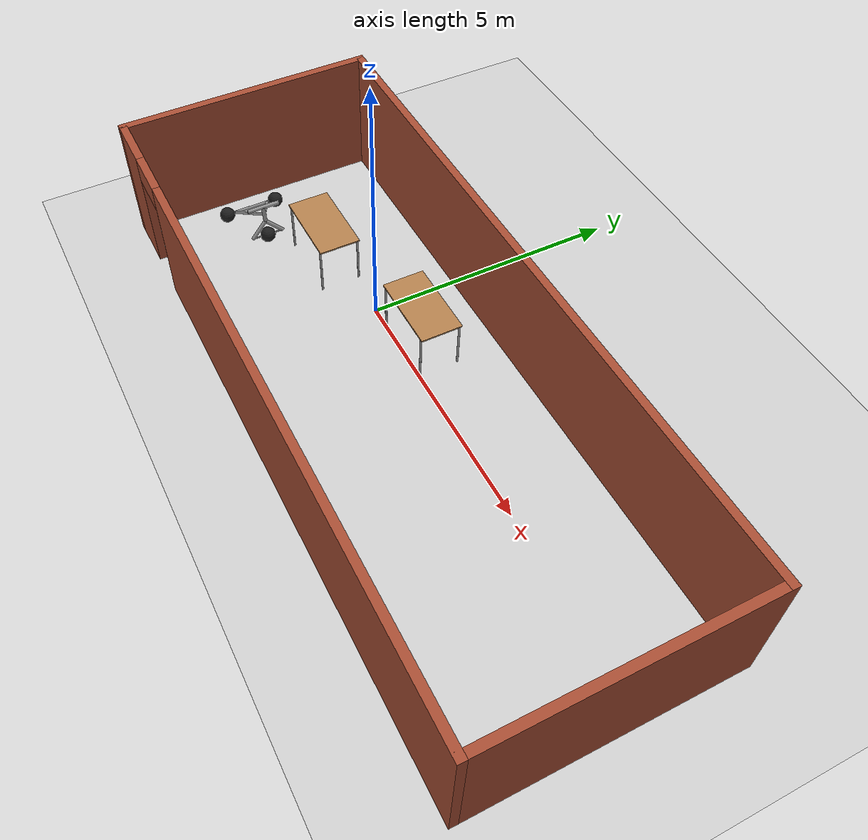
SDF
<sdf version="1.7">
 <world name="default">
  <light name="sun" type="directional">
   <pose>0 0 10 0 -0 0</pose>
   <diffuse>0.8 0.8 0.8 1</diffuse>
   <specular>0.2 0.2 0.2 1</specular>
   <attenuation>
    <range>1000</range>
    <constant>0.9</constant>
    <linear>0.01</linear>
    <quadratic>0.001</quadratic>
   </attenuation>
   <direction>-0.5 0.1 -0.9</direction>
   <spot><inner_angle>0</inner_angle><outer_angle>0</outer_angle><falloff>0</falloff></spot>
  </light>
  <model name="ground_plane">
   <static>1</static>
   <link name="link">
    <collision name="collision">
     <geometry><plane><normal>0 0 1</normal><size>100 100</size></plane></geometry>
     <surface>
      <contact><collide_bitmask>65535</collide_bitmask></contact>
      <friction><ode><mu>100</mu><mu2>50</mu2></ode></friction>
     </surface>
    </collision>
    <visual name="visual">
     <cast_shadows>0</cast_shadows>
     <geometry><plane><normal>0 0 1</normal><size>100 100</size></plane></geometry>
     <material>
      <script><uri>file://media/materials/scripts/gazebo.material</uri><name>Gazebo/Grey</name></script>
     </material>
    </visual>
   </link>
  </model>
  <gravity>0 0 -9.8</gravity>
  <magnetic_field>6e-06 2.3e-05 -4.2e-05</magnetic_field>
  <atmosphere type="adiabatic"/>
  <physics type="ode">
   <max_step_size>0.001</max_step_size>
   <real_time_factor>1</real_time_factor>
   <real_time_update_rate>1000</real_time_update_rate>
  </physics>
  <scene><ambient>0.4 0.4 0.4 1</ambient><background>0.7 0.7 0.7 1</background><shadows>1</shadows></scene>
  <audio><device>default</device></audio>
  <spherical_coordinates>
   <surface_model>EARTH_WGS84</surface_model>
   <latitude_deg>0</latitude_deg>
   <longitude_deg>0</longitude_deg>
   <elevation>0</elevation>
   <heading_deg>0</heading_deg>
  </spherical_coordinates>
  <model name="test_world">
   <pose>2.25942 -0.531293 0 0 -0 0</pose>
   <link name="Wall_3">
    <collision name="Wall_3_Collision">
     <geometry><box><size>5 0.15 2.5</size></box></geometry>
     <pose>0 0 1.25 0 -0 0</pose>
    </collision>
    <visual name="Wall_3_Visual">
     <pose>0 0 1.25 0 -0 0</pose>
     <geometry><box><size>5 0.15 2.5</size></box></geometry>
     <material>
      <script><uri>file://media/materials/scripts/gazebo.material</uri><name>Gazebo/Bricks</name></script>
      <ambient>1 1 1 1</ambient>
     </material>
     <meta><layer>0</layer></meta>
    </visual>
    <pose>-6.425 -0.161355 0 0 -0 1.5708</pose>
   </link>
   <link name="Wall_4">
    <collision name="Wall_4_Collision">
     <geometry><box><size>13 0.15 2.5</size></box></geometry>
     <pose>0 0 1.25 0 -0 0</pose>
    </collision>
    <visual name="Wall_4_Visual">
     <pose>0 0 1.25 0 -0 0</pose>
     <geometry><box><size>13 0.15 2.5</size></box></geometry>
     <material>
      <script><uri>file://media/materials/scripts/gazebo.material</uri><name>Gazebo/Bricks</name></script>
      <ambient>1 1 1 1</ambient>
     </material>
     <meta><layer>0</layer></meta>
    </visual>
    <pose>0 2.26364 0 0 -0 0</pose>
   </link>
   <link name="Wall_5">
    <collision name="Wall_5_Collision">
     <geometry><box><size>5 0.15 2.5</size></box></geometry>
     <pose>0 0 1.25 0 -0 0</pose>
    </collision>
    <visual name="Wall_5_Visual">
     <pose>0 0 1.25 0 -0 0</pose>
     <geometry><box><size>5 0.15 2.5</size></box></geometry>
     <material>
      <script><uri>file://media/materials/scripts/gazebo.material</uri><name>Gazebo/Bricks</name></script>
      <ambient>1 1 1 1</ambient>
     </material>
     <meta><layer>0</layer></meta>
    </visual>
    <pose>6.425 -0.161355 0 0 -0 -1.5708</pose>
   </link>
   <link name="Wall_6">
    <pose>0 -2.58636 0 0 -0 3.14159</pose>
    <visual name="Wall_6_Visual_0">
     <pose>-0.994006 0 1.25 0 -0 0</pose>
     <geometry><box><size>11.012 0.15 2.5</size></box></geometry>
     <material>
      <script><uri>file://media/materials/scripts/gazebo.material</uri><name>Gazebo/Bricks</name></script>
      <ambient>1 1 1 1</ambient>
     </material>
     <meta><layer>0</layer></meta>
    </visual>
    <collision name="Wall_6_Collision_0">
     <geometry><box><size>11.012 0.15 2.5</size></box></geometry>
     <pose>-0.994006 0 1.25 0 -0 0</pose>
    </collision>
    <visual name="Wall_6_Visual_1">
     <pose>5.95599 0 1.25 0 -0 0</pose>
     <geometry><box><size>1.08801 0.15 2.5</size></box></geometry>
     <material>
      <script><uri>file://media/materials/scripts/gazebo.material</uri><name>Gazebo/Bricks</name></script>
      <ambient>1 1 1 1</ambient>
     </material>
     <meta><layer>0</layer></meta>
    </visual>
    <collision name="Wall_6_Collision_1">
     <geometry><box><size>1.08801 0.15 2.5</size></box></geometry>
     <pose>5.95599 0 1.25 0 -0 0</pose>
    </collision>
    <visual name="Wall_6_Visual_2">
     <pose>4.96199 0 2.25 0 -0 0</pose>
     <geometry><box><size>0.9 0.15 0.5</size></box></geometry>
     <material>
      <script><uri>file://media/materials/scripts/gazebo.material</uri><name>Gazebo/Bricks</name></script>
      <ambient>1 1 1 1</ambient>
     </material>
     <meta><layer>0</layer></meta>
    </visual>
    <collision name="Wall_6_Collision_2">
     <geometry><box><size>0.9 0.15 0.5</size></box></geometry>
     <pose>4.96199 0 2.25 0 -0 0</pose>
    </collision>
   </link>
   <static>1</static>
  </model>
  <model name="table">
   <static>1</static>
   <link name="link">
    <collision name="surface">
     <pose>0 0 1 0 -0 0</pose>
     <geometry><box><size>1.5 0.8 0.03</size></box></geometry>
     <surface><friction><ode><mu>0.6</mu><mu2>0.6</mu2></ode></friction></surface>
    </collision>
    <visual name="visual1">
     <pose>0 0 1 0 -0 0</pose>
     <geometry><box><size>1.5 0.8 0.03</size></box></geometry>
     <material>
      <script><uri>file://media/materials/scripts/gazebo.material</uri><name>Gazebo/Wood</name></script>
     </material>
    </visual>
    <collision name="front_left_leg">
     <pose>0.68 0.38 0.5 0 -0 0</pose>
     <geometry><cylinder><radius>0.02</radius><length>1</length></cylinder></geometry>
    </collision>
    <visual name="front_left_leg">
     <pose>0.68 0.38 0.5 0 -0 0</pose>
     <geometry><cylinder><radius>0.02</radius><length>1</length></cylinder></geometry>
     <material>
      <script><uri>file://media/materials/scripts/gazebo.material</uri><name>Gazebo/Grey</name></script>
     </material>
    </visual>
    <collision name="front_right_leg">
     <pose>0.68 -0.38 0.5 0 -0 0</pose>
     <geometry><cylinder><radius>0.02</radius><length>1</length></cylinder></geometry>
    </collision>
    <visual name="front_right_leg">
     <pose>0.68 -0.38 0.5 0 -0 0</pose>
     <geometry><cylinder><radius>0.02</radius><length>1</length></cylinder></geometry>
     <material>
      <script><uri>file://media/materials/scripts/gazebo.material</uri><name>Gazebo/Grey</name></script>
     </material>
    </visual>
    <collision name="back_right_leg">
     <pose>-0.68 -0.38 0.5 0 -0 0</pose>
     <geometry><cylinder><radius>0.02</radius><length>1</length></cylinder></geometry>
    </collision>
    <visual name="back_right_leg">
     <pose>-0.68 -0.38 0.5 0 -0 0</pose>
     <geometry><cylinder><radius>0.02</radius><length>1</length></cylinder></geometry>
     <material>
      <script><uri>file://media/materials/scripts/gazebo.material</uri><name>Gazebo/Grey</name></script>
     </material>
    </visual>
    <collision name="back_left_leg">
     <pose>-0.68 0.38 0.5 0 -0 0</pose>
     <geometry><cylinder><radius>0.02</radius><length>1</length></cylinder></geometry>
    </collision>
    <visual name="back_left_leg">
     <pose>-0.68 0.38 0.5 0 -0 0</pose>
     <geometry><cylinder><radius>0.02</radius><length>1</length></cylinder></geometry>
     <material>
      <script><uri>file://media/materials/scripts/gazebo.material</uri><name>Gazebo/Grey</name></script>
     </material>
    </visual>
   </link>
   <pose>-1.65312 -0.272878 0 0 -0 0</pose>
  </model>
  <model name="table_0">
   <static>1</static>
   <link name="link">
    <collision name="surface">
     <pose>0 0 1 0 -0 0</pose>
     <geometry><box><size>1.5 0.8 0.03</size></box></geometry>
     <surface><friction><ode><mu>0.6</mu><mu2>0.6</mu2></ode></friction></surface>
    </collision>
    <visual name="visual1">
     <pose>0 0 1 0 -0 0</pose>
     <geometry><box><size>1.5 0.8 0.03</size></box></geometry>
     <material>
      <script><uri>file://media/materials/scripts/gazebo.material</uri><name>Gazebo/Wood</name></script>
     </material>
    </visual>
    <collision name="front_left_leg">
     <pose>0.68 0.38 0.5 0 -0 0</pose>
     <geometry><cylinder><radius>0.02</radius><length>1</length></cylinder></geometry>
    </collision>
    <visual name="front_left_leg">
     <pose>0.68 0.38 0.5 0 -0 0</pose>
     <geometry><cylinder><radius>0.02</radius><length>1</length></cylinder></geometry>
     <material>
      <script><uri>file://media/materials/scripts/gazebo.material</uri><name>Gazebo/Grey</name></script>
     </material>
    </visual>
    <collision name="front_right_leg">
     <pose>0.68 -0.38 0.5 0 -0 0</pose>
     <geometry><cylinder><radius>0.02</radius><length>1</length></cylinder></geometry>
    </collision>
    <visual name="front_right_leg">
     <pose>0.68 -0.38 0.5 0 -0 0</pose>
     <geometry><cylinder><radius>0.02</radius><length>1</length></cylinder></geometry>
     <material>
      <script><uri>file://media/materials/scripts/gazebo.material</uri><name>Gazebo/Grey</name></script>
     </material>
    </visual>
    <collision name="back_right_leg">
     <pose>-0.68 -0.38 0.5 0 -0 0</pose>
     <geometry><cylinder><radius>0.02</radius><length>1</length></cylinder></geometry>
    </collision>
    <visual name="back_right_leg">
     <pose>-0.68 -0.38 0.5 0 -0 0</pose>
     <geometry><cylinder><radius>0.02</radius><length>1</length></cylinder></geometry>
     <material>
      <script><uri>file://media/materials/scripts/gazebo.material</uri><name>Gazebo/Grey</name></script>
     </material>
    </visual>
    <collision name="back_left_leg">
     <pose>-0.68 0.38 0.5 0 -0 0</pose>
     <geometry><cylinder><radius>0.02</radius><length>1</length></cylinder></geometry>
    </collision>
    <visual name="back_left_leg">
     <pose>-0.68 0.38 0.5 0 -0 0</pose>
     <geometry><cylinder><radius>0.02</radius><length>1</length></cylinder></geometry>
     <material>
      <script><uri>file://media/materials/scripts/gazebo.material</uri><name>Gazebo/Grey</name></script>
     </material>
    </visual>
   </link>
   <pose>1.08424 0.406128 0 0 -0 0</pose>
  </model>
  <model name="trisphere_cycle">
   <link name="frame">
    <pose>-0.408559 0 0.385023 0 -0.522021 0</pose>
    <inertial>
     <mass>10</mass>
     <inertia><ixx>0.228</ixx><iyy>0.743521</iyy><izz>0.965521</izz><ixy>0</ixy><ixz>0</ixz><iyz>0</iyz></inertia>
    </inertial>
    <collision name="axle_collision">
     <pose>-0.471335 0 0 1.5708 -0 0</pose>
     <geometry><cylinder><length>1.03923</length><radius>0.03</radius></cylinder></geometry>
    </collision>
    <visual name="axle_visual">
     <pose>-0.471335 0 0 1.5708 -0 0</pose>
     <geometry><cylinder><length>1.03923</length><radius>0.03</radius></cylinder></geometry>
     <material>
      <script><uri>file://media/materials/scripts/gazebo.material</uri><name>Gazebo/Grey</name></script>
     </material>
    </visual>
    <collision name="frame_left_collision">
     <pose>0 0.171552 0 -2.79253 1.57079 3.14159</pose>
     <geometry><cylinder><length>1.00317</length><radius>0.03</radius></cylinder></geometry>
    </collision>
    <visual name="frame_left_visual">
     <pose>0 0.171552 0 -2.79253 1.57079 3.14159</pose>
     <geometry><cylinder><length>1.00317</length><radius>0.03</radius></cylinder></geometry>
     <material>
      <script><uri>file://media/materials/scripts/gazebo.material</uri><name>Gazebo/Grey</name></script>
     </material>
    </visual>
    <collision name="frame_right_collision">
     <pose>0 -0.171552 0 2.79253 1.57079 -3.14159</pose>
     <geometry><cylinder><length>1.00317</length><radius>0.03</radius></cylinder></geometry>
    </collision>
    <visual name="frame_right_visual">
     <pose>0 -0.171552 0 2.79253 1.57079 -3.14159</pose>
     <geometry><cylinder><length>1.00317</length><radius>0.03</radius></cylinder></geometry>
     <material>
      <script><uri>file://media/materials/scripts/gazebo.material</uri><name>Gazebo/Grey</name></script>
     </material>
    </visual>
   </link>
   <link name="fork">
    <pose>0.041441 0 0.385023 0 -0.174533 0</pose>
    <inertial>
     <mass>3</mass>
     <inertia>
      <ixx>0.158203</ixx>
      <iyy>0.0583594</iyy>
      <izz>0.102656</izz>
      <ixy>0</ixy>
      <ixz>0</ixz>
      <iyz>0</iyz>
     </inertia>
    </inertial>
    <collision name="handlebars_collision">
     <pose>0 0 0.397748 1.5708 -0 0</pose>
     <geometry><cylinder><length>0.636396</length><radius>0.0375</radius></cylinder></geometry>
    </collision>
    <visual name="handlebars_visual">
     <pose>0 0 0.397748 1.5708 -0 0</pose>
     <geometry><cylinder><length>0.636396</length><radius>0.0375</radius></cylinder></geometry>
     <material>
      <script><uri>file://media/materials/scripts/gazebo.material</uri><name>Gazebo/Grey</name></script>
     </material>
    </visual>
    <collision name="headtube_collision">
     <pose>0 0 0.238649 0 -0 0</pose>
     <geometry><cylinder><length>0.318198</length><radius>0.0375</radius></cylinder></geometry>
    </collision>
    <visual name="headtube_visual">
     <pose>0 0 0.238649 0 -0 0</pose>
     <geometry><cylinder><length>0.318198</length><radius>0.0375</radius></cylinder></geometry>
     <material>
      <script><uri>file://media/materials/scripts/gazebo.material</uri><name>Gazebo/Grey</name></script>
     </material>
    </visual>
    <collision name="spindle_collision">
     <pose>0 0 -0.238649 1.5708 -0 0</pose>
     <geometry><cylinder><length>0.636396</length><radius>0.015</radius></cylinder></geometry>
    </collision>
    <visual name="spindle_visual">
     <pose>0 0 -0.238649 1.5708 -0 0</pose>
     <geometry><cylinder><length>0.636396</length><radius>0.015</radius></cylinder></geometry>
     <material>
      <script><uri>file://media/materials/scripts/gazebo.material</uri><name>Gazebo/Grey</name></script>
     </material>
    </visual>
    <collision name="fork_left_collision">
     <pose>0 0.159099 -0.07955 0.785398 -0 0</pose>
     <geometry><cylinder><length>0.45</length><radius>0.0375</radius></cylinder></geometry>
    </collision>
    <visual name="fork_left_visual">
     <pose>0 0.159099 -0.07955 0.785398 -0 0</pose>
     <geometry><cylinder><length>0.45</length><radius>0.0375</radius></cylinder></geometry>
     <material>
      <script><uri>file://media/materials/scripts/gazebo.material</uri><name>Gazebo/Grey</name></script>
     </material>
    </visual>
    <collision name="fork_right_collision">
     <pose>0 -0.159099 -0.07955 -0.785398 0 0</pose>
     <geometry><cylinder><length>0.45</length><radius>0.0375</radius></cylinder></geometry>
    </collision>
    <visual name="fork_right_visual">
     <pose>0 -0.159099 -0.07955 -0.785398 0 0</pose>
     <geometry><cylinder><length>0.45</length><radius>0.0375</radius></cylinder></geometry>
     <material>
      <script><uri>file://media/materials/scripts/gazebo.material</uri><name>Gazebo/Grey</name></script>
     </material>
    </visual>
   </link>
   <link name="wheel_front">
    <pose>0.082882 0 0.15 0 -0 0</pose>
    <inertial>
     <mass>0.5</mass>
     <inertia><ixx>0.0045</ixx><iyy>0.0045</iyy><izz>0.0045</izz><ixy>0</ixy><ixz>0</ixz><iyz>0</iyz></inertia>
    </inertial>
    <collision name="collision">
     <geometry><sphere><radius>0.15</radius></sphere></geometry>
     <surface><contact><ode><kp>1e+08</kp><kd>1</kd><min_depth>0.0005</min_depth></ode></contact></surface>
    </collision>
    <visual name="visual">
     <geometry><sphere><radius>0.15</radius></sphere></geometry>
     <material>
      <script><uri>file://media/materials/scripts/gazebo.material</uri><name>Gazebo/Black</name></script>
     </material>
    </visual>
   </link>
   <joint name="wheel_front_steer" type="revolute">
    <parent>frame</parent>
    <child>fork</child>
    <axis>
     <xyz>0 0 1</xyz>
     <limit><lower>-0.959931</lower><upper>0.959931</upper></limit>
     <dynamics><spring_reference>0</spring_reference><spring_stiffness>0</spring_stiffness></dynamics>
    </axis>
   </joint>
   <joint name="wheel_front_spin" type="revolute">
    <parent>fork</parent>
    <child>wheel_front</child>
    <axis>
     <xyz>0 1 0</xyz>
     <limit><lower>-1e+16</lower><upper>1e+16</upper></limit>
     <dynamics><spring_reference>0</spring_reference><spring_stiffness>0</spring_stiffness></dynamics>
    </axis>
   </joint>
   <link name="wheel_rear_left">
    <pose>-0.817118 0.519615 0.15 0 -0 0</pose>
    <inertial>
     <mass>0.5</mass>
     <inertia><ixx>0.0045</ixx><iyy>0.0045</iyy><izz>0.0045</izz><ixy>0</ixy><ixz>0</ixz><iyz>0</iyz></inertia>
    </inertial>
    <collision name="collision">
     <geometry><sphere><radius>0.15</radius></sphere></geometry>
     <surface><contact><ode><kp>1e+08</kp><kd>1</kd><min_depth>0.0005</min_depth></ode></contact></surface>
    </collision>
    <visual name="visual">
     <geometry><sphere><radius>0.15</radius></sphere></geometry>
     <material>
      <script><uri>file://media/materials/scripts/gazebo.material</uri><name>Gazebo/Black</name></script>
     </material>
    </visual>
   </link>
   <joint name="wheel_rear_left_spin" type="revolute">
    <parent>frame</parent>
    <child>wheel_rear_left</child>
    <axis>
     <xyz>0 1 0</xyz>
     <limit><lower>-1e+16</lower><upper>1e+16</upper></limit>
     <dynamics><spring_reference>0</spring_reference><spring_stiffness>0</spring_stiffness></dynamics>
    </axis>
   </joint>
   <link name="wheel_rear_right">
    <pose>-0.817118 -0.519615 0.15 0 -0 0</pose>
    <inertial>
     <mass>0.5</mass>
     <inertia><ixx>0.0045</ixx><iyy>0.0045</iyy><izz>0.0045</izz><ixy>0</ixy><ixz>0</ixz><iyz>0</iyz></inertia>
    </inertial>
    <collision name="collision">
     <geometry><sphere><radius>0.15</radius></sphere></geometry>
     <surface><contact><ode><kp>1e+08</kp><kd>1</kd><min_depth>0.0005</min_depth></ode></contact></surface>
    </collision>
    <visual name="visual">
     <geometry><sphere><radius>0.15</radius></sphere></geometry>
     <material>
      <script><uri>file://media/materials/scripts/gazebo.material</uri><name>Gazebo/Black</name></script>
     </material>
    </visual>
   </link>
   <joint name="wheel_rear_right_spin" type="revolute">
    <parent>frame</parent>
    <child>wheel_rear_right</child>
    <axis>
     <xyz>0 1 0</xyz>
     <limit><lower>-1e+16</lower><upper>1e+16</upper></limit>
     <dynamics><spring_reference>0</spring_reference><spring_stiffness>0</spring_stiffness></dynamics>
    </axis>
   </joint>
   <pose>-2.79353 -1.06696 -0 0 -0 0</pose>
  </model>
 </world>
</sdf>
